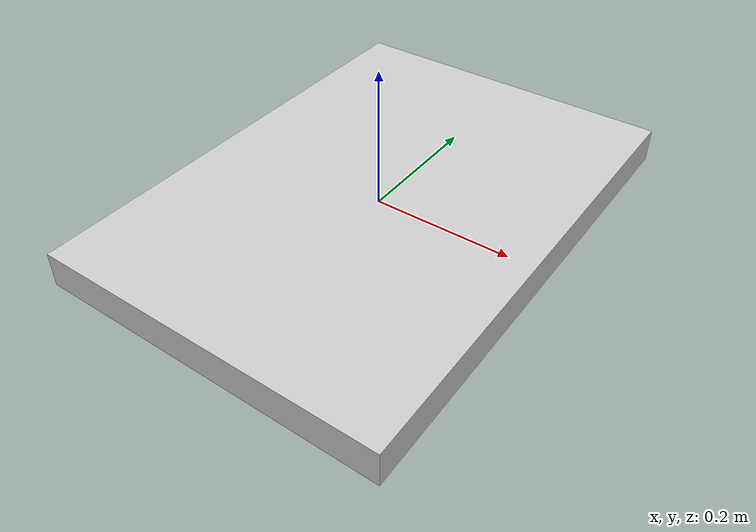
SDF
<?xml version="1.0"?>
<sdf version="1.7">
  <model name="static_workbench">
    <static>true</static>
    <link name="workbench_link">
      <inertial>
        <!-- SDF规范：mass是子标签，不是属性 -->
        <mass>50.0</mass>
        <inertia>
          <!-- SDF规范：ixx/ixy等是子标签，不是属性 -->
          <ixx>1.0</ixx>
          <ixy>0.0</ixy>
          <ixz>0.0</ixz>
          <iyy>1.0</iyy>
          <iyz>0.0</iyz>
          <izz>1.0</izz>
        </inertia>
      </inertial>
      <collision name="workbench_coll">
        <geometry>
          <box>
            <size>0.5 0.70 0.05</size>
          </box>
        </geometry>
        <surface>
          <friction>
            <ode>
              <mu>1.0</mu>
              <mu2>1.0</mu2>
            </ode>
          </friction>
        </surface>
      </collision>
      <visual name="workbench_vis">
        <geometry>
          <box>
            <size>0.5 0.70 0.05</size>
          </box>
        </geometry>
        <material>
          <script>
            <uri>file://media/materials/scripts/gazebo.material</uri>
            <name>Gazebo/LightGrey</name>
          </script>
        </material>
      </visual>
    </link>
  </model>
</sdf>
